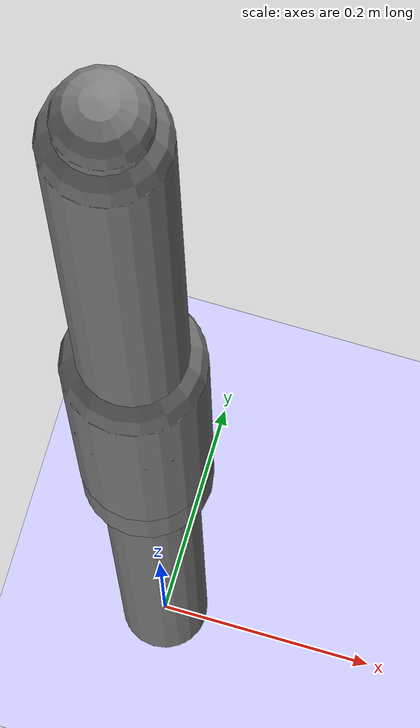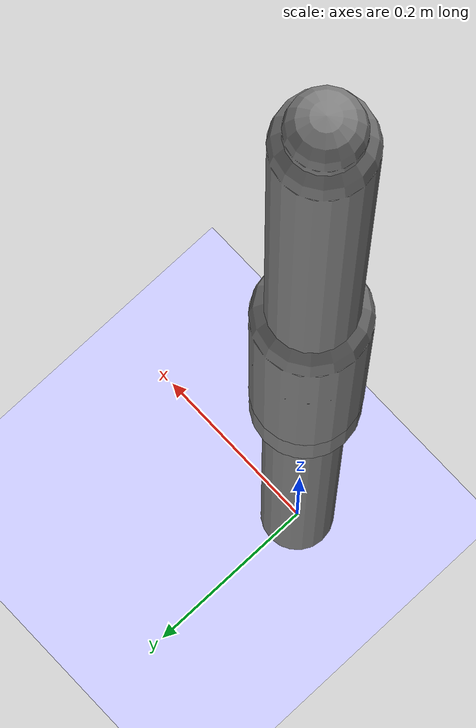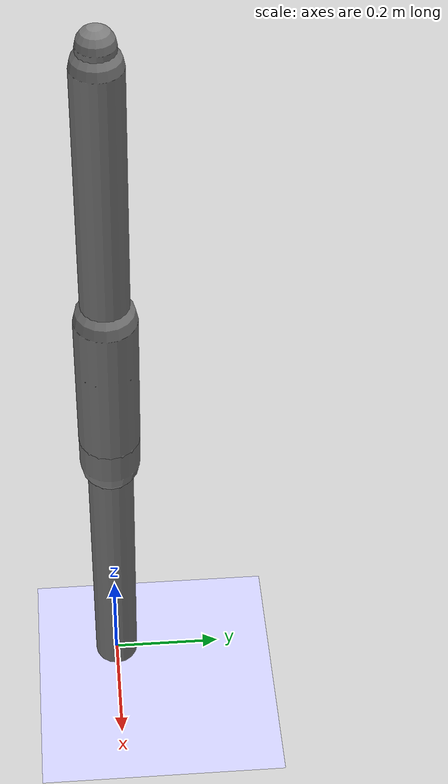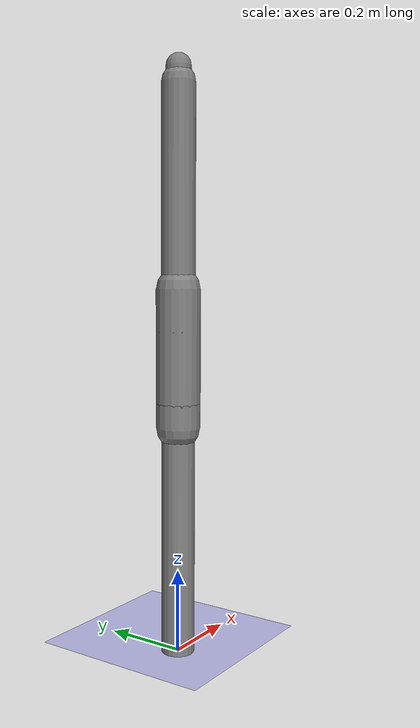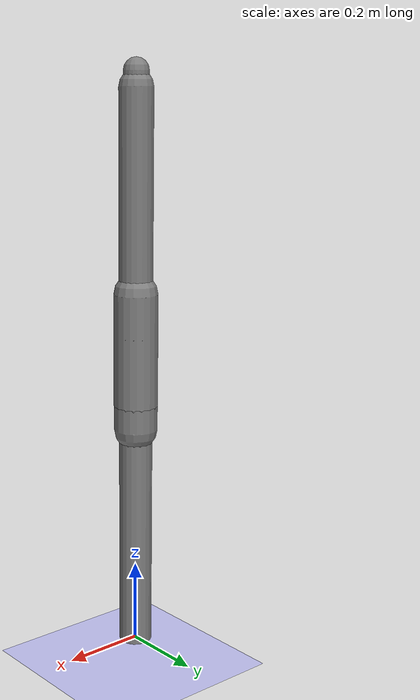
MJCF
<?xml version='1.0' encoding='UTF-8'?>
<mujoco model="robot_model">
  <worldbody>
    <light name="light" pos="0 -3 10" dir="0 0.5 -1" diffuse=".8 .8 .8" specular="0.1 0.1 0.1"/>
    <geom name="floor" type="plane" size="10.0 10.0 0.1" pos="0 0 0" rgba="0.8 0.8 1 1" contype="2" conaffinity="1"/>
    <body name="limb0" pos="0 0 0">
      <geom type="capsule" fromto="0 0 0 0 0 0.6" size="0.04" density="1073.7638204118662" contype="1" conaffinity="2"/>
      <site type="sphere" size="0.01" name="limb0_site0" pos="0 0 0.3879865204841603"/>
      <site type="sphere" size="0.01" name="limb0_site1" pos="0 0 0.5044662501644708"/>
      <freejoint name="limb0_root"/>
      <body name="limb1" pos="0 0 0.3879865204841603">
        <geom type="capsule" fromto="0 0 0 0 0 0.2639757366326131" size="0.03303782304059255" density="616.6153958948047" contype="1" conaffinity="2"/>
        <site type="sphere" size="0.01" name="limb1_site0" pos="0 0 0.16469519644951955"/>
        <site type="sphere" size="0.01" name="limb1_site1" pos="0 0 0.10105994540977413"/>
        <site type="sphere" size="0.01" name="limb1_site2" pos="0 0 0.14621385581581725"/>
        <body name="limb2" pos="0 0 0.16469519644951955">
          <geom type="capsule" fromto="0 0 0 0 0 0.2308883175355425" size="0.0526135099365978" density="745.4449559354061" contype="1" conaffinity="2"/>
          <site type="sphere" size="0.01" name="limb2_site0" pos="0 0 0.05997017094025045"/>
          <body name="limb3" pos="0 0 0.05997017094025045">
            <geom type="capsule" fromto="0 0 0 0 0 0.2718382711396347" size="0.052967933430587415" density="959.6445780864858" contype="1" conaffinity="2"/>
            <joint name="joint_limb2_limb3_0" type="hinge" axis="0 1 0" range="-53.51127969085405 53.51127969085405" damping="5.0"/>
          </body>
          <joint name="joint_limb1_limb2_0" type="hinge" axis="0 1 0" range="-78.8368751691934 78.8368751691934" damping="5.0"/>
        </body>
        <body name="limb4" pos="0 0 0.10105994540977413">
          <geom type="capsule" fromto="0 0 0 0 0 0.4707380658142769" size="0.03920297771912111" density="864.4703426833397" contype="1" conaffinity="2"/>
          <site type="sphere" size="0.01" name="limb4_site0" pos="0 0 0.4707380658142769"/>
          <site type="sphere" size="0.01" name="limb4_site1" pos="0 0 0.27244421386562234"/>
          <site type="sphere" size="0.01" name="limb4_site2" pos="0 0 0.41497332602825493"/>
          <body name="limb5" pos="0 0 0.4707380658142769">
            <geom type="capsule" fromto="0 0 0 0 0 0.43527159405665855" size="0.030107346951033842" density="764.7141169713287" contype="1" conaffinity="2"/>
            <joint name="joint_limb4_limb5_0" type="hinge" axis="0 1 0" range="-116.04726021765768 116.04726021765768" damping="5.0"/>
          </body>
          <body name="limb6" pos="0 0 0.27244421386562234">
            <geom type="capsule" fromto="0 0 0 0 0 0.2102868528065015" size="0.03451406520881031" density="566.487314585425" contype="1" conaffinity="2"/>
            <joint name="joint_limb4_limb6_0" type="hinge" axis="0 1 0" range="-104.94540138861841 104.94540138861841" damping="5.0"/>
          </body>
          <body name="limb7" pos="0 0 0.41497332602825493">
            <geom type="capsule" fromto="0 0 0 0 0 0.4558236432736898" size="0.040393786555888975" density="1054.6511241400187" contype="1" conaffinity="2"/>
            <joint name="joint_limb4_limb7_0" type="hinge" axis="1 0 0" range="-117.55009071451269 117.55009071451269" damping="5.0"/>
          </body>
          <joint name="joint_limb1_limb4_0" type="hinge" axis="0 1 0" range="-84.37282476408203 84.37282476408203" damping="5.0"/>
        </body>
        <body name="limb8" pos="0 0 0.14621385581581725">
          <geom type="capsule" fromto="0 0 0 0 0 0.25215086514996193" size="0.042933509923616706" density="424.6749137779462" contype="1" conaffinity="2"/>
          <joint name="joint_limb1_limb8_0" type="hinge" axis="0 0 1" range="-74.19033846047556 74.19033846047556" damping="5.0"/>
        </body>
        <joint name="joint_limb0_limb1_0" type="hinge" axis="0 1 0" range="-89.53684670583189 89.53684670583189" damping="5.0"/>
      </body>
      <body name="limb9" pos="0 0 0.5044662501644708">
        <geom type="capsule" fromto="0 0 0 0 0 0.16901349670638882" size="0.029773060920250092" density="867.1563718257595" contype="1" conaffinity="2"/>
        <joint name="joint_limb0_limb9_0" type="hinge" axis="0 1 0" range="-63.22844417036358 63.22844417036358" damping="5.0"/>
      </body>
    </body>
  </worldbody>
  <actuator>
    <position name="position_actuator_joint_limb0_limb1_0" joint="joint_limb0_limb1_0" gear="1.1522482362826674" inheritrange="1" kp="10.0"/>
    <position name="position_actuator_joint_limb1_limb2_0" joint="joint_limb1_limb2_0" gear="1.320444813612617" inheritrange="1" kp="10.0"/>
    <position name="position_actuator_joint_limb2_limb3_0" joint="joint_limb2_limb3_0" gear="1.5090076720061971" inheritrange="1" kp="10.0"/>
    <position name="position_actuator_joint_limb1_limb4_0" joint="joint_limb1_limb4_0" gear="2.0" inheritrange="1" kp="10.0"/>
    <position name="position_actuator_joint_limb4_limb5_0" joint="joint_limb4_limb5_0" gear="1.839604132232704" inheritrange="1" kp="10.0"/>
    <position name="position_actuator_joint_limb4_limb6_0" joint="joint_limb4_limb6_0" gear="1.0887960667114218" inheritrange="1" kp="10.0"/>
    <position name="position_actuator_joint_limb4_limb7_0" joint="joint_limb4_limb7_0" gear="1.7176675214945842" inheritrange="1" kp="10.0"/>
    <position name="position_actuator_joint_limb1_limb8_0" joint="joint_limb1_limb8_0" gear="1.1880155203111582" inheritrange="1" kp="10.0"/>
    <position name="position_actuator_joint_limb0_limb9_0" joint="joint_limb0_limb9_0" gear="1.068427433655958" inheritrange="1" kp="10.0"/>
  </actuator>
</mujoco>
